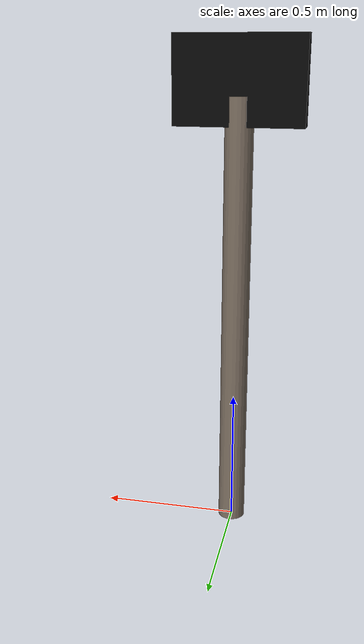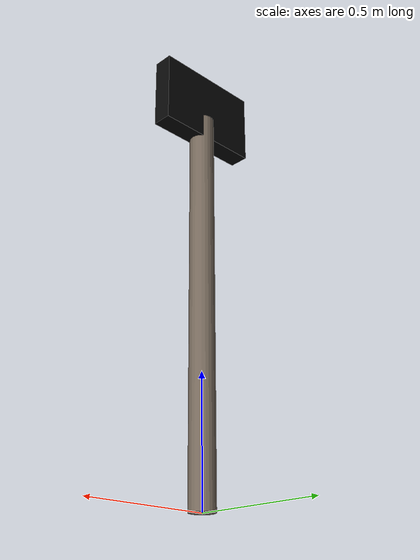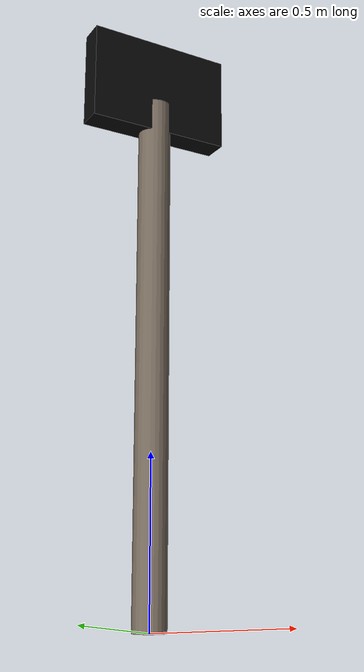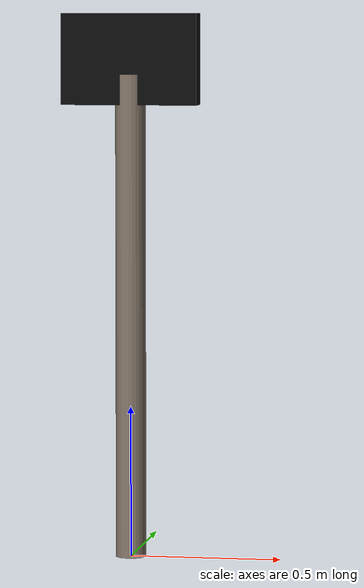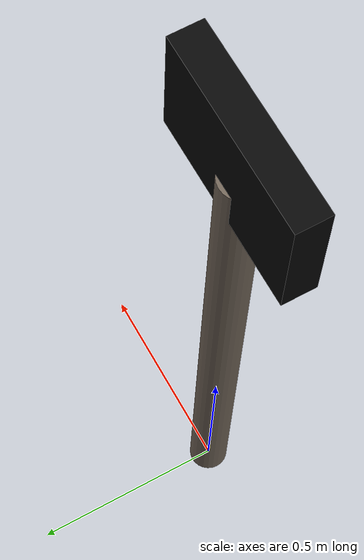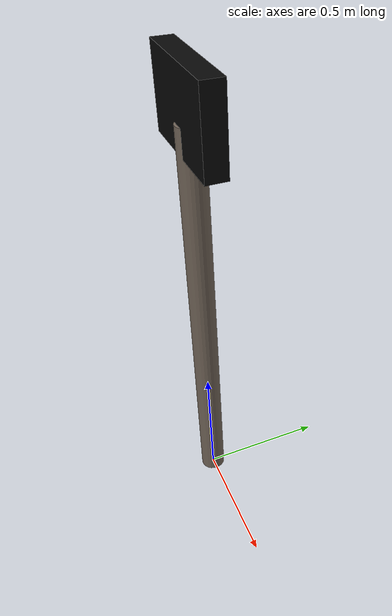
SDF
<?xml version="1.0"?>
<sdf version="1.9">
  <!-- 港口信标: 1 根杆 + 1 个灯板, 复用 vrx::LightBuoyPlugin 闪烁(green)。
       灯板材质由插件按 1s/拍 循环: 3 拍 green + 2 拍 off => 闪烁。 -->
  <model name="port_beacon_green">
    <static>true</static>
    <link name="beacon">
      <visual name="pole">
        <pose>0 0 0.8 0 0 0</pose>
        <geometry>
          <cylinder>
            <radius>0.05</radius>
            <length>1.6</length>
          </cylinder>
        </geometry>
        <material>
          <ambient>0.35 0.30 0.25 1</ambient>
          <diffuse>0.45 0.40 0.35 1</diffuse>
        </material>
      </visual>
      <visual name="lamp">
        <pose>0 0 1.65 0 0 0</pose>
        <geometry>
          <box>
            <size>0.45 0.08 0.30</size>
          </box>
        </geometry>
        <material>
          <ambient>0.03 0.03 0.03 1</ambient>
          <diffuse>0.03 0.03 0.03 1</diffuse>
          <specular>0.1 0.1 0.1 1</specular>
        </material>
        <plugin name="vrx::LightBuoyPlugin" filename="libLightBuoyPlugin.so">
          <color_1>green</color_1>
          <color_2>green</color_2>
          <color_3>green</color_3>
          <visuals>
            <visual>port_beacon_green::beacon::lamp</visual>
          </visuals>
        </plugin>
      </visual>
    </link>
  </model>
</sdf>
